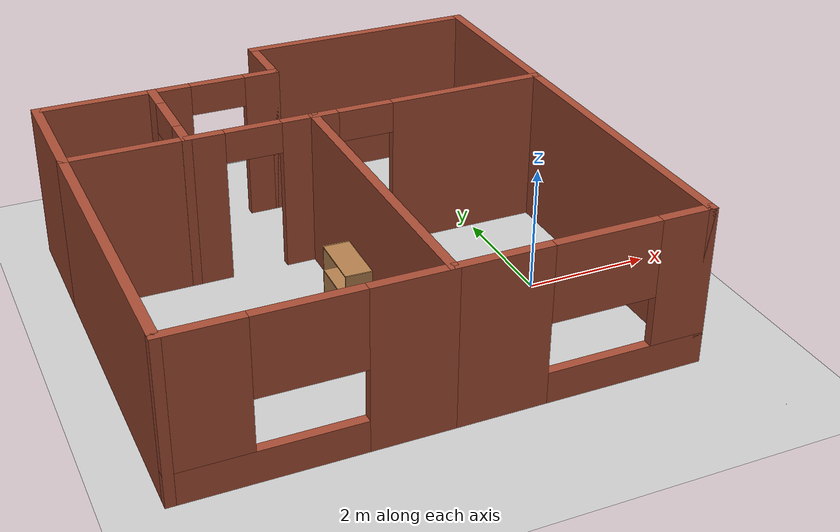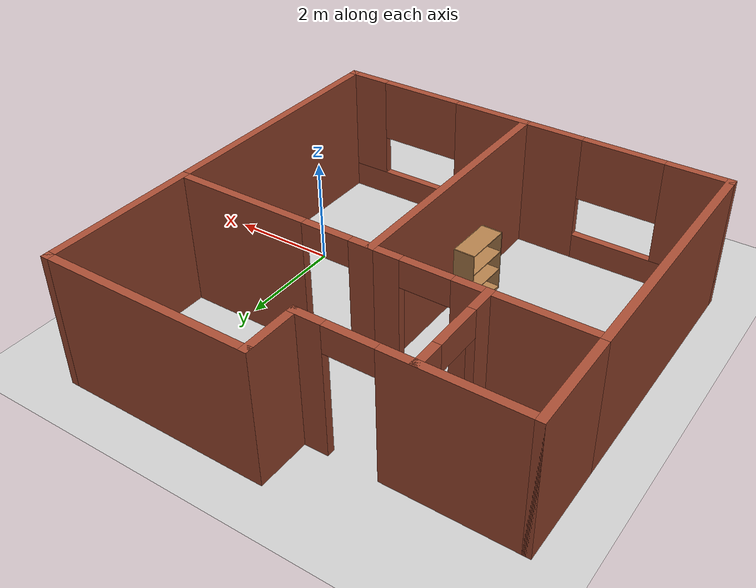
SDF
<sdf version="1.6">
 <world name="default">
  <plugin name="hello" filename="libhello.so"/>
  <light name="sun" type="directional">
   <pose>0 0 10 0 -0 0</pose>
   <diffuse>0.8 0.8 0.8 1</diffuse>
   <specular>0.2 0.2 0.2 1</specular>
   <attenuation>
    <range>1000</range>
    <constant>0.9</constant>
    <linear>0.01</linear>
    <quadratic>0.001</quadratic>
   </attenuation>
   <direction>-0.5 0.1 -0.9</direction>
  </light>
  <model name="ground_plane">
   <static>1</static>
   <link name="link">
    <collision name="collision">
     <geometry><plane><normal>0 0 1</normal><size>100 100</size></plane></geometry>
     <surface>
      <contact><collide_bitmask>65535</collide_bitmask></contact>
      <friction><ode><mu>100</mu><mu2>50</mu2></ode></friction>
     </surface>
    </collision>
    <visual name="visual">
     <cast_shadows>0</cast_shadows>
     <geometry><plane><normal>0 0 1</normal><size>100 100</size></plane></geometry>
     <material>
      <script><uri>file://media/materials/scripts/gazebo.material</uri><name>Gazebo/Grey</name></script>
     </material>
    </visual>
   </link>
  </model>
  <gravity>0 0 -9.8</gravity>
  <magnetic_field>6e-06 2.3e-05 -4.2e-05</magnetic_field>
  <atmosphere type="adiabatic"/>
  <physics name="default_physics" default="0" type="ode">
   <max_step_size>0.001</max_step_size>
   <real_time_factor>1</real_time_factor>
   <real_time_update_rate>1000</real_time_update_rate>
  </physics>
  <scene><ambient>0.4 0.4 0.4 1</ambient><background>0.7 0.7 0.7 1</background><shadows>1</shadows></scene>
  <audio><device>default</device></audio>
  <spherical_coordinates>
   <surface_model>EARTH_WGS84</surface_model>
   <latitude_deg>0</latitude_deg>
   <longitude_deg>0</longitude_deg>
   <elevation>0</elevation>
   <heading_deg>0</heading_deg>
  </spherical_coordinates>
  <model name="apartment">
   <pose>-2.71612 1.17815 0 0 -0 0</pose>
   <link name="Wall_12">
    <collision name="Wall_12_Collision">
     <geometry><box><size>3 0.15 2.5</size></box></geometry>
     <pose>0 0 1.25 0 -0 0</pose>
    </collision>
    <visual name="Wall_12_Visual">
     <pose>0 0 1.25 0 -0 0</pose>
     <geometry><box><size>3 0.15 2.5</size></box></geometry>
     <material>
      <script><uri>file://media/materials/scripts/gazebo.material</uri><name>Gazebo/Bricks</name></script>
      <ambient>1 1 1 1</ambient>
     </material>
     <meta><layer>0</layer></meta>
    </visual>
    <pose>3.85 2.425 0 0 -0 -1.5708</pose>
   </link>
   <link name="Wall_14">
    <pose>1.925 1 0 0 -0 3.14159</pose>
    <visual name="Wall_14_Visual_0">
     <pose>-0.681236 0 1.25 0 -0 0</pose>
     <geometry><box><size>2.63753 0.15 2.5</size></box></geometry>
     <material>
      <script><uri>file://media/materials/scripts/gazebo.material</uri><name>Gazebo/Bricks</name></script>
      <ambient>0.760784 0.662745 0.627451 1</ambient>
     </material>
     <meta><layer>0</layer></meta>
    </visual>
    <collision name="Wall_14_Collision_0">
     <geometry><box><size>2.63753 0.15 2.5</size></box></geometry>
     <pose>-0.681236 0 1.25 0 -0 0</pose>
    </collision>
    <visual name="Wall_14_Visual_1">
     <pose>1.76876 0 1.25 0 -0 0</pose>
     <geometry><box><size>0.462473 0.15 2.5</size></box></geometry>
     <material>
      <script><uri>file://media/materials/scripts/gazebo.material</uri><name>Gazebo/Bricks</name></script>
      <ambient>0.760784 0.662745 0.627451 1</ambient>
     </material>
     <meta><layer>0</layer></meta>
    </visual>
    <collision name="Wall_14_Collision_1">
     <geometry><box><size>0.462473 0.15 2.5</size></box></geometry>
     <pose>1.76876 0 1.25 0 -0 0</pose>
    </collision>
    <visual name="Wall_14_Visual_2">
     <pose>1.08753 0 2.25 0 -0 0</pose>
     <geometry><box><size>0.9 0.15 0.5</size></box></geometry>
     <material>
      <script><uri>file://media/materials/scripts/gazebo.material</uri><name>Gazebo/Bricks</name></script>
      <ambient>0.760784 0.662745 0.627451 1</ambient>
     </material>
     <meta><layer>0</layer></meta>
    </visual>
    <collision name="Wall_14_Collision_2">
     <geometry><box><size>0.9 0.15 0.5</size></box></geometry>
     <pose>1.08753 0 2.25 0 -0 0</pose>
    </collision>
   </link>
   <link name="Wall_18">
    <collision name="Wall_18_Collision">
     <geometry><box><size>5 0.15 2.5</size></box></geometry>
     <pose>0 0 1.25 0 -0 0</pose>
    </collision>
    <visual name="Wall_18_Visual">
     <pose>0 0 1.25 0 -0 0</pose>
     <geometry><box><size>5 0.15 2.5</size></box></geometry>
     <material>
      <script><uri>file://media/materials/scripts/gazebo.material</uri><name>Gazebo/Bricks</name></script>
      <ambient>1 1 1 1</ambient>
     </material>
     <meta><layer>0</layer></meta>
    </visual>
    <pose>0 -1.425 0 0 -0 -1.5708</pose>
   </link>
   <link name="Wall_19">
    <pose>1.925 -3.85 0 0 -0 0</pose>
    <visual name="Wall_19_Visual_0">
     <pose>-1.24293 0 1.25 0 -0 0</pose>
     <geometry><box><size>1.51415 0.15 2.5</size></box></geometry>
     <material>
      <script><uri>file://media/materials/scripts/gazebo.material</uri><name>Gazebo/Bricks</name></script>
      <ambient>1 1 1 1</ambient>
     </material>
     <meta><layer>0</layer></meta>
    </visual>
    <collision name="Wall_19_Collision_0">
     <geometry><box><size>1.51415 0.15 2.5</size></box></geometry>
     <pose>-1.24293 0 1.25 0 -0 0</pose>
    </collision>
    <visual name="Wall_19_Visual_1">
     <pose>0.757074 0 0.25 0 -0 0</pose>
     <geometry><box><size>2.48585 0.15 0.5</size></box></geometry>
     <material>
      <script><uri>file://media/materials/scripts/gazebo.material</uri><name>Gazebo/Bricks</name></script>
      <ambient>1 1 1 1</ambient>
     </material>
     <meta><layer>0</layer></meta>
    </visual>
    <collision name="Wall_19_Collision_1">
     <geometry><box><size>2.48585 0.15 0.5</size></box></geometry>
     <pose>0.757074 0 0.25 0 -0 0</pose>
    </collision>
    <visual name="Wall_19_Visual_2">
     <pose>1.56451 0 1.5 0 -0 0</pose>
     <geometry><box><size>0.870975 0.15 2</size></box></geometry>
     <material>
      <script><uri>file://media/materials/scripts/gazebo.material</uri><name>Gazebo/Bricks</name></script>
      <ambient>1 1 1 1</ambient>
     </material>
     <meta><layer>0</layer></meta>
    </visual>
    <collision name="Wall_19_Collision_2">
     <geometry><box><size>0.870975 0.15 2</size></box></geometry>
     <pose>1.56451 0 1.5 0 -0 0</pose>
    </collision>
    <visual name="Wall_19_Visual_3">
     <pose>0.321587 0 1.9 0 -0 0</pose>
     <geometry><box><size>1.61488 0.15 1.2</size></box></geometry>
     <material>
      <script><uri>file://media/materials/scripts/gazebo.material</uri><name>Gazebo/Bricks</name></script>
      <ambient>1 1 1 1</ambient>
     </material>
     <meta><layer>0</layer></meta>
    </visual>
    <collision name="Wall_19_Collision_3">
     <geometry><box><size>1.61488 0.15 1.2</size></box></geometry>
     <pose>0.321587 0 1.9 0 -0 0</pose>
    </collision>
   </link>
   <link name="Wall_20">
    <collision name="Wall_20_Collision">
     <geometry><box><size>5 0.15 2.5</size></box></geometry>
     <pose>0 0 1.25 0 -0 0</pose>
    </collision>
    <visual name="Wall_20_Visual">
     <pose>0 0 1.25 0 -0 0</pose>
     <geometry><box><size>5 0.15 2.5</size></box></geometry>
     <material>
      <script><uri>file://media/materials/scripts/gazebo.material</uri><name>Gazebo/Bricks</name></script>
      <ambient>1 1 1 1</ambient>
     </material>
     <meta><layer>0</layer></meta>
    </visual>
    <pose>3.85 -1.425 0 0 -0 1.5708</pose>
   </link>
   <link name="Wall_22">
    <pose>-1.925 -3.85 0 0 -0 3.14159</pose>
    <visual name="Wall_22_Visual_0">
     <pose>-1.3771 0 1.25 0 -0 0</pose>
     <geometry><box><size>1.2458 0.15 2.5</size></box></geometry>
     <material>
      <script><uri>file://media/materials/scripts/gazebo.material</uri><name>Gazebo/Bricks</name></script>
      <ambient>1 1 1 1</ambient>
     </material>
     <meta><layer>0</layer></meta>
    </visual>
    <collision name="Wall_22_Collision_0">
     <geometry><box><size>1.2458 0.15 2.5</size></box></geometry>
     <pose>-1.3771 0 1.25 0 -0 0</pose>
    </collision>
    <visual name="Wall_22_Visual_1">
     <pose>0.622901 0 0.25 0 -0 0</pose>
     <geometry><box><size>2.7542 0.15 0.5</size></box></geometry>
     <material>
      <script><uri>file://media/materials/scripts/gazebo.material</uri><name>Gazebo/Bricks</name></script>
      <ambient>1 1 1 1</ambient>
     </material>
     <meta><layer>0</layer></meta>
    </visual>
    <collision name="Wall_22_Collision_1">
     <geometry><box><size>2.7542 0.15 0.5</size></box></geometry>
     <pose>0.622901 0 0.25 0 -0 0</pose>
    </collision>
    <visual name="Wall_22_Visual_2">
     <pose>1.39273 0 1.5 0 -0 0</pose>
     <geometry><box><size>1.21454 0.15 2</size></box></geometry>
     <material>
      <script><uri>file://media/materials/scripts/gazebo.material</uri><name>Gazebo/Bricks</name></script>
      <ambient>1 1 1 1</ambient>
     </material>
     <meta><layer>0</layer></meta>
    </visual>
    <collision name="Wall_22_Collision_2">
     <geometry><box><size>1.21454 0.15 2</size></box></geometry>
     <pose>1.39273 0 1.5 0 -0 0</pose>
    </collision>
    <visual name="Wall_22_Visual_3">
     <pose>0.01563 0 1.9 0 -0 0</pose>
     <geometry><box><size>1.53966 0.15 1.2</size></box></geometry>
     <material>
      <script><uri>file://media/materials/scripts/gazebo.material</uri><name>Gazebo/Bricks</name></script>
      <ambient>1 1 1 1</ambient>
     </material>
     <meta><layer>0</layer></meta>
    </visual>
    <collision name="Wall_22_Collision_3">
     <geometry><box><size>1.53966 0.15 1.2</size></box></geometry>
     <pose>0.01563 0 1.9 0 -0 0</pose>
    </collision>
   </link>
   <link name="Wall_23">
    <collision name="Wall_23_Collision">
     <geometry><box><size>5 0.15 2.5</size></box></geometry>
     <pose>0 0 1.25 0 -0 0</pose>
    </collision>
    <visual name="Wall_23_Visual">
     <pose>0 0 1.25 0 -0 0</pose>
     <geometry><box><size>5 0.15 2.5</size></box></geometry>
     <material>
      <script><uri>file://media/materials/scripts/gazebo.material</uri><name>Gazebo/Bricks</name></script>
      <ambient>1 1 1 1</ambient>
     </material>
     <meta><layer>0</layer></meta>
    </visual>
    <pose>-3.85 -1.425 0 0 -0 1.5708</pose>
   </link>
   <link name="Wall_24">
    <pose>-1.925 1 0 0 -0 0</pose>
    <visual name="Wall_24_Visual_0">
     <pose>-0.758531 0 1.25 0 -0 0</pose>
     <geometry><box><size>2.48294 0.15 2.5</size></box></geometry>
     <material>
      <script><uri>file://media/materials/scripts/gazebo.material</uri><name>Gazebo/Bricks</name></script>
      <ambient>1 1 1 1</ambient>
     </material>
     <meta><layer>0</layer></meta>
    </visual>
    <collision name="Wall_24_Collision_0">
     <geometry><box><size>2.48294 0.15 2.5</size></box></geometry>
     <pose>-0.758531 0 1.25 0 -0 0</pose>
    </collision>
    <visual name="Wall_24_Visual_1">
     <pose>1.69147 0 1.25 0 -0 0</pose>
     <geometry><box><size>0.617061 0.15 2.5</size></box></geometry>
     <material>
      <script><uri>file://media/materials/scripts/gazebo.material</uri><name>Gazebo/Bricks</name></script>
      <ambient>1 1 1 1</ambient>
     </material>
     <meta><layer>0</layer></meta>
    </visual>
    <collision name="Wall_24_Collision_1">
     <geometry><box><size>0.617061 0.15 2.5</size></box></geometry>
     <pose>1.69147 0 1.25 0 -0 0</pose>
    </collision>
    <visual name="Wall_24_Visual_2">
     <pose>0.932939 0 2.25 0 -0 0</pose>
     <geometry><box><size>0.9 0.15 0.5</size></box></geometry>
     <material>
      <script><uri>file://media/materials/scripts/gazebo.material</uri><name>Gazebo/Bricks</name></script>
      <ambient>1 1 1 1</ambient>
     </material>
     <meta><layer>0</layer></meta>
    </visual>
    <collision name="Wall_24_Collision_2">
     <geometry><box><size>0.9 0.15 0.5</size></box></geometry>
     <pose>0.932939 0 2.25 0 -0 0</pose>
    </collision>
   </link>
   <link name="Wall_26">
    <collision name="Wall_26_Collision">
     <geometry><box><size>2 0.15 2.5</size></box></geometry>
     <pose>0 0 1.25 0 -0 0</pose>
    </collision>
    <visual name="Wall_26_Visual">
     <pose>0 0 1.25 0 -0 0</pose>
     <geometry><box><size>2 0.15 2.5</size></box></geometry>
     <material>
      <script><uri>file://media/materials/scripts/gazebo.material</uri><name>Gazebo/Bricks</name></script>
      <ambient>1 1 1 1</ambient>
     </material>
     <meta><layer>0</layer></meta>
    </visual>
    <pose>-3.85 1.925 0 0 -0 1.5708</pose>
   </link>
   <link name="Wall_38">
    <collision name="Wall_38_Collision">
     <geometry><box><size>4 0.15 2.5</size></box></geometry>
     <pose>0 0 1.25 0 -0 0</pose>
    </collision>
    <visual name="Wall_38_Visual">
     <pose>0 0 1.25 0 -0 0</pose>
     <geometry><box><size>4 0.15 2.5</size></box></geometry>
     <material>
      <script><uri>file://media/materials/scripts/gazebo.material</uri><name>Gazebo/Bricks</name></script>
      <ambient>0.760784 0.662745 0.627451 1</ambient>
     </material>
     <meta><layer>0</layer></meta>
    </visual>
    <pose>1.925 3.85 0 0 -0 3.14159</pose>
   </link>
   <link name="Wall_46">
    <pose>-1.925 2.85 0 0 -0 0</pose>
    <visual name="Wall_46_Visual_0">
     <pose>-0.744312 0 1.25 0 -0 0</pose>
     <geometry><box><size>2.51138 0.15 2.5</size></box></geometry>
     <material>
      <script><uri>file://media/materials/scripts/gazebo.material</uri><name>Gazebo/Bricks</name></script>
      <ambient>1 1 1 1</ambient>
     </material>
     <meta><layer>0</layer></meta>
    </visual>
    <collision name="Wall_46_Collision_0">
     <geometry><box><size>2.51138 0.15 2.5</size></box></geometry>
     <pose>-0.744312 0 1.25 0 -0 0</pose>
    </collision>
    <visual name="Wall_46_Visual_1">
     <pose>1.70569 0 1.25 0 -0 0</pose>
     <geometry><box><size>0.588623 0.15 2.5</size></box></geometry>
     <material>
      <script><uri>file://media/materials/scripts/gazebo.material</uri><name>Gazebo/Bricks</name></script>
      <ambient>1 1 1 1</ambient>
     </material>
     <meta><layer>0</layer></meta>
    </visual>
    <collision name="Wall_46_Collision_1">
     <geometry><box><size>0.588623 0.15 2.5</size></box></geometry>
     <pose>1.70569 0 1.25 0 -0 0</pose>
    </collision>
    <visual name="Wall_46_Visual_2">
     <pose>0.961377 0 2.25 0 -0 0</pose>
     <geometry><box><size>0.9 0.15 0.5</size></box></geometry>
     <material>
      <script><uri>file://media/materials/scripts/gazebo.material</uri><name>Gazebo/Bricks</name></script>
      <ambient>1 1 1 1</ambient>
     </material>
     <meta><layer>0</layer></meta>
    </visual>
    <collision name="Wall_46_Collision_2">
     <geometry><box><size>0.9 0.15 0.5</size></box></geometry>
     <pose>0.961377 0 2.25 0 -0 0</pose>
    </collision>
   </link>
   <link name="Wall_47">
    <collision name="Wall_47_Collision">
     <geometry><box><size>1.15 0.15 2.5</size></box></geometry>
     <pose>0 0 1.25 0 -0 0</pose>
    </collision>
    <visual name="Wall_47_Visual">
     <pose>0 0 1.25 0 -0 0</pose>
     <geometry><box><size>1.15 0.15 2.5</size></box></geometry>
     <material>
      <script><uri>file://media/materials/scripts/gazebo.material</uri><name>Gazebo/Bricks</name></script>
      <ambient>1 1 1 1</ambient>
     </material>
     <meta><layer>0</layer></meta>
    </visual>
    <pose>0 3.35 0 0 -0 1.5708</pose>
   </link>
   <link name="Wall_51">
    <pose>-2.02899 1.92304 0 0 -0 -1.5708</pose>
    <visual name="Wall_51_Visual_0">
     <pose>-0.721573 0 1.25 0 -0 0</pose>
     <geometry><box><size>0.556854 0.15 2.5</size></box></geometry>
     <material>
      <script><uri>file://media/materials/scripts/gazebo.material</uri><name>Gazebo/Bricks</name></script>
      <ambient>1 1 1 1</ambient>
     </material>
     <meta><layer>0</layer></meta>
    </visual>
    <collision name="Wall_51_Collision_0">
     <geometry><box><size>0.556854 0.15 2.5</size></box></geometry>
     <pose>-0.721573 0 1.25 0 -0 0</pose>
    </collision>
    <visual name="Wall_51_Visual_1">
     <pose>0.728427 0 1.25 0 -0 0</pose>
     <geometry><box><size>0.543146 0.15 2.5</size></box></geometry>
     <material>
      <script><uri>file://media/materials/scripts/gazebo.material</uri><name>Gazebo/Bricks</name></script>
      <ambient>1 1 1 1</ambient>
     </material>
     <meta><layer>0</layer></meta>
    </visual>
    <collision name="Wall_51_Collision_1">
     <geometry><box><size>0.543146 0.15 2.5</size></box></geometry>
     <pose>0.728427 0 1.25 0 -0 0</pose>
    </collision>
    <visual name="Wall_51_Visual_2">
     <pose>0.006854 0 2.25 0 -0 0</pose>
     <geometry><box><size>0.9 0.15 0.5</size></box></geometry>
     <material>
      <script><uri>file://media/materials/scripts/gazebo.material</uri><name>Gazebo/Bricks</name></script>
      <ambient>1 1 1 1</ambient>
     </material>
     <meta><layer>0</layer></meta>
    </visual>
    <collision name="Wall_51_Collision_2">
     <geometry><box><size>0.9 0.15 0.5</size></box></geometry>
     <pose>0.006854 0 2.25 0 -0 0</pose>
    </collision>
   </link>
   <static>1</static>
  </model>
  <model name="ball_bearing">
   <link name="link">
    <pose>0 0 0.003 0 -0 0</pose>
    <inertial>
     <mass>0.0011</mass>
     <inertia>
      <ixx>3.96e-09</ixx>
      <ixy>0</ixy>
      <ixz>0</ixz>
      <iyy>3.96e-09</iyy>
      <iyz>0</iyz>
      <izz>3.96e-09</izz>
     </inertia>
    </inertial>
    <collision name="collision">
     <geometry><sphere><radius>0.003</radius></sphere></geometry>
     <surface>
      <contact>
       <poissons_ratio>0.305</poissons_ratio>
       <elastic_modulus>2e+11</elastic_modulus>
       <ode><kp>100000</kp><kd>100</kd><max_vel>100</max_vel><min_depth>0.001</min_depth></ode>
      </contact>
      <friction>
       <torsional>
        <coefficient>1</coefficient>
        <use_patch_radius>0</use_patch_radius>
        <surface_radius>0.01</surface_radius>
       </torsional>
      </friction>
     </surface>
    </collision>
    <visual name="visual">
     <geometry><sphere><radius>0.003</radius></sphere></geometry>
     <material>
      <script><uri>file://media/materials/scripts/gazebo.material</uri><name>Gazebo/Grey</name></script>
     </material>
    </visual>
    <velocity_decay><linear>0</linear><angular>0.005</angular></velocity_decay>
   </link>
   <pose>1.71415 -4.07831 -0.00041 0 -0 0</pose>
  </model>
  <model name="bookshelf">
   <static>1</static>
   <link name="link">
    <inertial><mass>1</mass></inertial>
    <collision name="back">
     <pose>0 0.005 0.6 0 -0 0</pose>
     <geometry><box><size>0.9 0.01 1.2</size></box></geometry>
    </collision>
    <visual name="visual1">
     <pose>0 0.005 0.6 0 -0 0</pose>
     <geometry><box><size>0.9 0.01 1.2</size></box></geometry>
     <material>
      <script><uri>file://media/materials/scripts/gazebo.material</uri><name>Gazebo/Wood</name></script>
     </material>
    </visual>
    <collision name="left_side">
     <pose>0.45 -0.195 0.6 0 -0 0</pose>
     <geometry><box><size>0.02 0.4 1.2</size></box></geometry>
    </collision>
    <visual name="visual2">
     <pose>0.45 -0.195 0.6 0 -0 0</pose>
     <geometry><box><size>0.02 0.4 1.2</size></box></geometry>
     <material>
      <script><uri>file://media/materials/scripts/gazebo.material</uri><name>Gazebo/Wood</name></script>
     </material>
    </visual>
    <collision name="right_side">
     <pose>-0.45 -0.195 0.6 0 -0 0</pose>
     <geometry><box><size>0.02 0.4 1.2</size></box></geometry>
    </collision>
    <visual name="visual3">
     <pose>-0.45 -0.195 0.6 0 -0 0</pose>
     <geometry><box><size>0.02 0.4 1.2</size></box></geometry>
     <material>
      <script><uri>file://media/materials/scripts/gazebo.material</uri><name>Gazebo/Wood</name></script>
     </material>
    </visual>
    <collision name="bottom">
     <pose>0 -0.195 0.03 0 -0 0</pose>
     <geometry><box><size>0.88 0.4 0.06</size></box></geometry>
    </collision>
    <visual name="visual4">
     <pose>0 -0.195 0.03 0 -0 0</pose>
     <geometry><box><size>0.88 0.4 0.06</size></box></geometry>
     <material>
      <script><uri>file://media/materials/scripts/gazebo.material</uri><name>Gazebo/Wood</name></script>
     </material>
    </visual>
    <collision name="top">
     <pose>0 -0.195 1.19 0 -0 0</pose>
     <geometry><box><size>0.88 0.4 0.02</size></box></geometry>
    </collision>
    <visual name="visual5">
     <pose>0 -0.195 1.19 0 -0 0</pose>
     <geometry><box><size>0.88 0.4 0.02</size></box></geometry>
     <material>
      <script><uri>file://media/materials/scripts/gazebo.material</uri><name>Gazebo/Wood</name></script>
     </material>
    </visual>
    <collision name="low_shelf">
     <pose>0 -0.195 0.43 0 -0 0</pose>
     <geometry><box><size>0.88 0.4 0.02</size></box></geometry>
    </collision>
    <visual name="visual6">
     <pose>0 -0.195 0.43 0 -0 0</pose>
     <geometry><box><size>0.88 0.4 0.02</size></box></geometry>
     <material>
      <script><uri>file://media/materials/scripts/gazebo.material</uri><name>Gazebo/Wood</name></script>
     </material>
    </visual>
    <collision name="high_shelf">
     <pose>0 -0.195 0.8 0 -0 0</pose>
     <geometry><box><size>0.88 0.4 0.02</size></box></geometry>
    </collision>
    <visual name="visual7">
     <pose>0 -0.195 0.8 0 -0 0</pose>
     <geometry><box><size>0.88 0.4 0.02</size></box></geometry>
     <material>
      <script><uri>file://media/materials/scripts/gazebo.material</uri><name>Gazebo/Wood</name></script>
     </material>
    </visual>
   </link>
   <pose>-2.98816 -0.277228 0.20564 0 0 -1.59464</pose>
  </model>
  <model name="my_ball">
   <link name="link_0_clone">
    <inertial>
     <mass>1</mass>
     <inertia><ixx>0.1</ixx><ixy>0</ixy><ixz>0</ixz><iyy>0.1</iyy><iyz>0</iyz><izz>0.1</izz></inertia>
    </inertial>
    <visual name="visual">
     <geometry><sphere><radius>0.1</radius></sphere></geometry>
     <material>
      <lighting>1</lighting>
      <script><uri>file://media/materials/scripts/gazebo.material</uri><name>Gazebo/Grey</name></script>
      <shader type="pixel"><normal_map>__default__</normal_map></shader>
      <ambient>1 1 1 1</ambient>
      <diffuse>1 1 1 1</diffuse>
      <specular>1 1 1 1</specular>
      <emissive>1 1 1 1</emissive>
     </material>
    </visual>
    <collision name="collision">
     <geometry><sphere><radius>0.1</radius></sphere></geometry>
     <surface>
      <friction>
       <ode><mu>1</mu><mu2>1</mu2><fdir1>0 0 0</fdir1><slip1>0</slip1><slip2>0</slip2></ode>
       <torsional>
        <coefficient>1</coefficient>
        <patch_radius>0</patch_radius>
        <surface_radius>0</surface_radius>
        <use_patch_radius>1</use_patch_radius>
        <ode><slip>0</slip></ode>
       </torsional>
      </friction>
      <bounce><restitution_coefficient>0</restitution_coefficient><threshold>1e+06</threshold></bounce>
      <contact>
       <collide_without_contact>0</collide_without_contact>
       <collide_without_contact_bitmask>1</collide_without_contact_bitmask>
       <collide_bitmask>1</collide_bitmask>
       <ode>
        <soft_cfm>0</soft_cfm>
        <soft_erp>0.2</soft_erp>
        <kp>1e+13</kp>
        <kd>1</kd>
        <max_vel>0.01</max_vel>
        <min_depth>0</min_depth>
       </ode>
       <bullet>
        <split_impulse>1</split_impulse>
        <split_impulse_penetration_threshold>-0.01</split_impulse_penetration_threshold>
        <soft_cfm>0</soft_cfm>
        <soft_erp>0.2</soft_erp>
        <kp>1e+13</kp>
        <kd>1</kd>
       </bullet>
      </contact>
     </surface>
    </collision>
   </link>
   <static>0</static>
   <pose>0.655857 -0.335741 0.1 0 -0 0</pose>
  </model>
  <plugin filename="libcollision_map_creator.so" name="collision_map_creator"/>
 </world>
</sdf>
